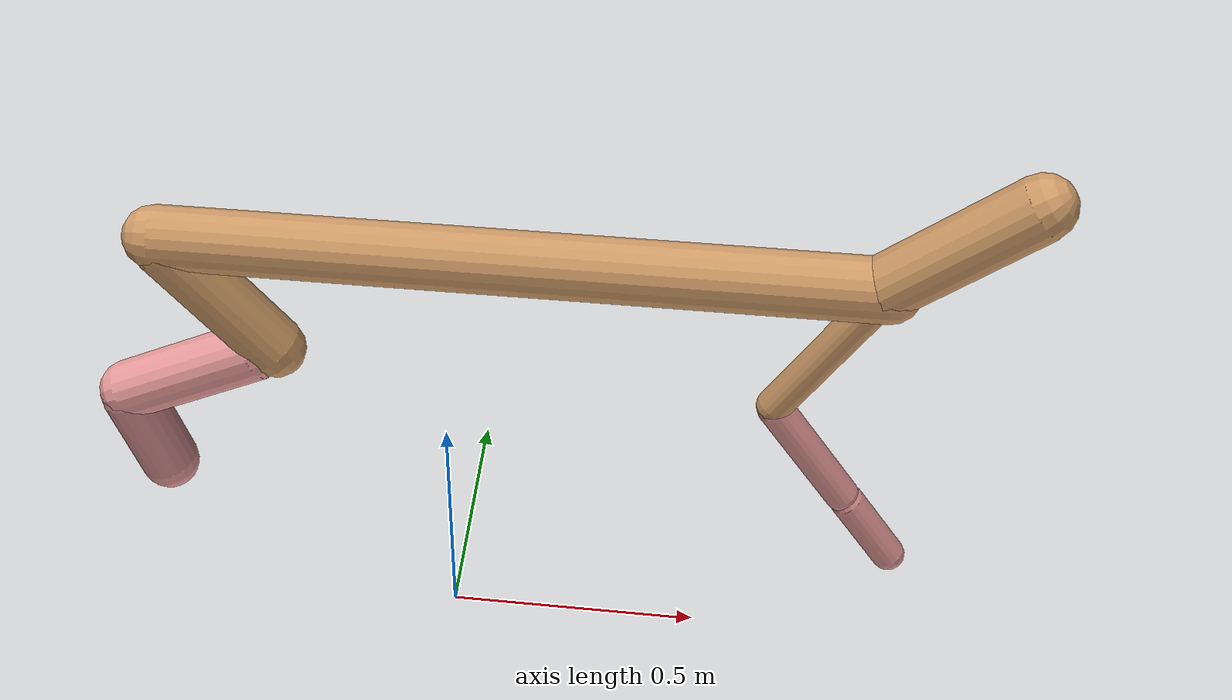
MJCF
<mujoco model="cheetah">
  <compiler angle="radian" coordinate="local" inertiafromgeom="true" settotalmass="14" />
  <default>
    <joint armature=".1" damping=".01" limited="true" solimplimit="0 .8 .03" solreflimit=".02 1" stiffness="8" />
    <geom conaffinity="0" condim="3" contype="1" friction="0.8 .1 .1" rgba="0.8 0.6 .4 1" solimp="0.0 0.8 0.01" solref="0.02 1" />
    <motor ctrllimited="true" ctrlrange="-1 1" />
  </default>
  <size nstack="300000" nuser_geom="1" />
  <option gravity="0 0 -9.81" timestep="0.01" />
  <worldbody>
    <body name="torso" pos="0.0 0.0 0.9363292465121325">
      <joint armature="0" axis="1 0 0" damping="0" limited="false" name="ignorex" pos="0 0 0" stiffness="0" type="slide" />
      <joint armature="0" axis="0 0 1" damping="0" limited="false" name="ignorez" pos="0 0 0" stiffness="0" type="slide" />
      <joint armature="0" axis="0 1 0" damping="0" limited="false" name="ignorey" pos="0 0 0" stiffness="0" type="hinge" />
      <geom fromto="-0.5 0.0 0.0 0.781152160902713 0.0 0.0" name="torso" size="0.058005354824843744" type="capsule" />
      <geom axisangle="0 1 0 .87" name="head" pos="0.881152160902713 0.0 0.1" size="0.05755784208528519 0.15" type="capsule" />

      <body name="bthigh" pos="-.5 0 0">
        <joint axis="0 1 0" damping="6" name="bthigh" pos="0 0 0" range="-.52 1.05" stiffness="240" type="hinge" />
        <geom axisangle="0 1 0 -3.8" name="bthigh" pos="0.09970450244272117 0.0 -0.1296158531755375" size="0.05723110237954683 0.14451534797111498" type="capsule" />
        <body name="bshin" pos="0.15940900488544232 0.0 -0.24923170635107503">
          <joint axis="0 1 0" damping="4.5" name="bshin" pos="0 0 0" range="-.785 .785" stiffness="180" type="hinge" />
          <geom axisangle="0 1 0 -2.03" name="bshin" pos="-0.13955156625571583 0.0 -0.06977578312785791" rgba="0.9 0.6 0.6 1" size="0.05723110237954683 0.1494986358321879" type="capsule" />
          <body name="bfoot" pos="-0.27910313251143165 0.0 -0.13955156625571583">
            <joint axis="0 1 0" damping="3" name="bfoot" pos="0 0 0" range="-.4 .785" stiffness="120" type="hinge" />
            <geom axisangle="0 1 0 -.27" name="bfoot" pos="0.02990716689610553 0.0 -0.09669983963074122" rgba="0.9 0.6 0.6 1" size="0.05723110237954683 0.09368581178817109" type="capsule" />
            <inertial mass="10" />
          </body>
        </body>
      </body>
      <body name="fthigh" pos="0.781152160902713 0.0 0.0">
        <joint axis="0 1 0" damping="4.5" name="fthigh" pos="0 0 0" range="-1.5 0.8" stiffness="180" type="hinge" />
        <geom axisangle="0 1 0 .52" name="fthigh" pos="-0.0865664938845048 0.0 -0.1483997038020082" size="0.032939863587194605 0.16587844119886364" type="capsule" />
        <body name="fshin" pos="-0.1731329877690096 0.0 -0.2967994076040164">
          <joint axis="0 1 0" damping="3" name="fshin" pos="0 0 0" range="-1.2 1.1" stiffness="120" type="hinge" />
          <geom axisangle="0 1 0 -.6" name="fshin" pos="0.08034211861044026 0.0 -0.1112429334606096" rgba="0.9 0.6 0.6 1" size="0.032939863587194605 0.1322038704291695" type="capsule" />
          <body name="ffoot" pos="0.16068423722088052 0.0 -0.2224858669212192">
            <joint axis="0 1 0" damping="1.5" name="ffoot" pos="0 0 0" range="-3.1 -0.3" stiffness="60" type="hinge" />
            <geom axisangle="0 1 0 -.6" name="ffoot" pos="0.05435750877307368 0.0 -0.08455612475811462" rgba="0.9 0.6 0.6 1" size="0.032939863587194605 0.08730444273624402" type="capsule" />
            <inertial mass="10" />
          </body>
        </body>
      </body>
    </body>
  </worldbody>
  <actuator>
    <motor gear="120" joint="bthigh" name="bthigh" />
    <motor gear="90" joint="bshin" name="bshin" />
    <motor gear="60" joint="bfoot" name="bfoot" />
    <motor gear="120" joint="fthigh" name="fthigh" />
    <motor gear="60" joint="fshin" name="fshin" />
    <motor gear="30" joint="ffoot" name="ffoot" />
  </actuator>
</mujoco>
